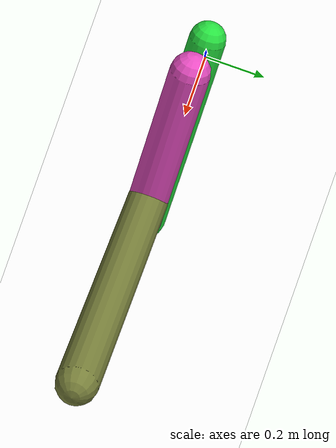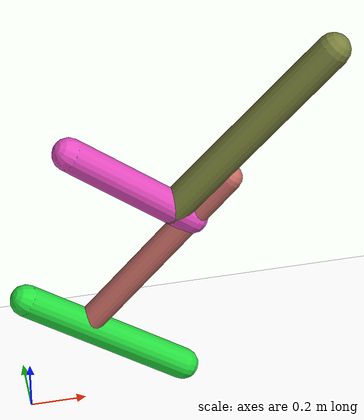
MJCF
<mujoco model="morphology">
  <option timestep="0.01"/>
  <default>
    <default class="/"/>
  </default>
  <asset>
    <texture name="texplane" type="2d" builtin="checker" rgb1="0.1 0.2 0.3" rgb2="0.2 0.3 0.4" width="300" height="300"/>
    <material name="MatPlane" class="/" texture="texplane" texrepeat="20 20" specular="1" shininess="1" reflectance="0.5"/>
  </asset>
  <worldbody>
    <light name="//unnamed_light_0" class="/" directional="true" pos="0 0 1.5" dir="0 0 -1.3" cutoff="1e+02" exponent="1" diffuse="1 1 1" specular="0.1 0.1 0.1"/>
    <geom name="ground" class="/" type="plane" size="15 15 0.5" material="MatPlane" rgba="1 1 1 1"/>
    <body name="body" pos="0 0 0.53">
      <geom name="geom0" class="/" type="capsule" contype="1" conaffinity="1" condim="3" size="0.057" rgba="0.15 0.88 0.25 1" friction="0.4 0.1 0.1" fromto="0 0 0 0.56 0 -0.43"/>
      <body name="body1" pos="0.21 0 -0.16">
        <geom name="geom1" class="/" type="capsule" contype="1" conaffinity="1" condim="3" size="0.047" rgba="0.78 0.42 0.39 1" friction="0.4 0.1 0.1" fromto="0 0 0 0.51 0 0.61"/>
        <body name="body2" pos="0.38 0 0.45">
          <geom name="geom2" class="/" type="capsule" contype="1" conaffinity="1" condim="3" size="0.058" rgba="0.91 0.3 0.76 1" friction="0.4 0.1 0.1" fromto="0 0 0 -0.42 0 0.36"/>
          <body name="body3" pos="-0.063 0 0.054">
            <geom name="geom3" class="/" type="capsule" contype="1" conaffinity="1" condim="3" size="0.059" rgba="0.47 0.5 0.23 1" friction="0.4 0.1 0.1" fromto="0 0 0 0.54 0 0.61"/>
            <joint name="joint3" class="/" type="hinge" axis="0 1 0" limited="true" stiffness="20" range="-60 60" armature="0.1" damping="2"/>
          </body>
          <joint name="joint2" class="/" type="hinge" axis="0 1 0" limited="true" stiffness="20" range="-67 67" armature="0.1" damping="2"/>
        </body>
        <joint name="joint1" class="/" type="hinge" axis="0 1 0" limited="true" stiffness="20" range="-39 39" armature="0.1" damping="2"/>
      </body>
      <joint name="rootx" class="/" type="slide" axis="1 0 0" limited="false" stiffness="0" armature="0" damping="0"/>
      <joint name="rootz" class="/" type="slide" axis="0 0 1" limited="false" stiffness="0" armature="0" damping="0"/>
      <joint name="rooty" class="/" type="hinge" axis="0 1 0" limited="false" stiffness="0" armature="0" damping="0"/>
    </body>
  </worldbody>
  <actuator>
    <motor name="motor3" class="/" ctrllimited="true" ctrlrange="-1 1" gear="1.6e+02" joint="joint3"/>
    <motor name="motor2" class="/" ctrllimited="true" ctrlrange="-1 1" gear="1.5e+02" joint="joint2"/>
    <motor name="motor1" class="/" ctrllimited="true" ctrlrange="-1 1" gear="1.8e+02" joint="joint1"/>
  </actuator>
  <sensor>
    <subtreelinvel name="velocity" body="body"/>
  </sensor>
</mujoco>
